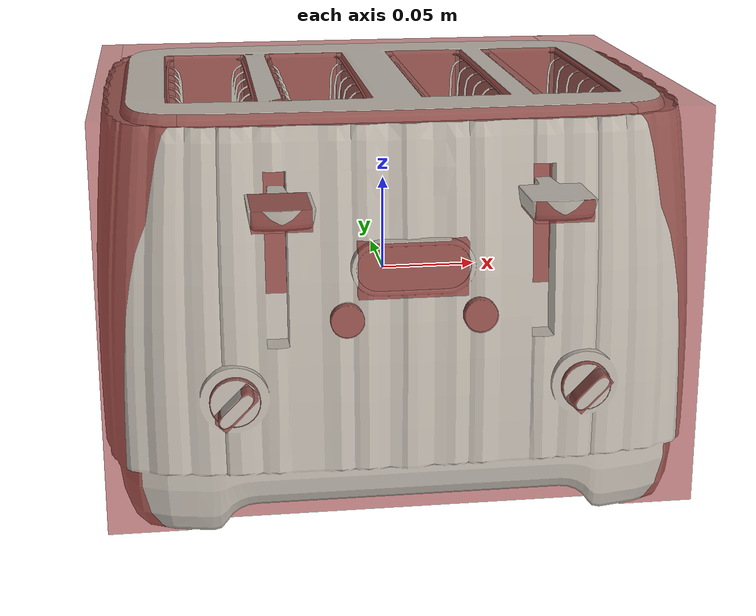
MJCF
<?xml version='1.0' encoding='UTF-8'?>
<mujoco model="model">
  <option timestep="0.002" gravity="0.0 0.0 -9.81"/>
  <compiler angle="radian"/>
  <asset>
    <mesh file="visuals/sideL_button_cancel.obj" name="sideL_button_cancel_vis"/>
    <mesh file="visuals/sideL_knob_doneness.obj" name="sideL_knob_doneness_vis"/>
    <mesh file="visuals/sideL_lever.obj" name="sideL_lever_vis"/>
    <mesh file="visuals/sideR_button_cancel.obj" name="sideR_button_cancel_vis"/>
    <mesh file="visuals/sideR_knob_doneness.obj" name="sideR_knob_doneness_vis"/>
    <mesh file="visuals/sideR_lever.obj" name="sideR_lever_vis"/>
    <mesh file="visuals/Body001.obj" name="Body001_vis"/>
    <mesh file="visuals/Body002.obj" name="Body002_vis"/>
    <texture file="visuals/T_BC001.png" name="Body001_material" type="2d"/>
    <material name="Body001_material" rgba="1 1 1 1.0" texture="Body001_material" shininess="0.4472135901451111" specular="0.8"/>
    <texture file="visuals/T_BC001.png" name="sideL_button_cancel_material" type="2d"/>
    <material name="sideL_button_cancel_material" rgba="1 1 1 1.0" texture="sideL_button_cancel_material" shininess="0.4472135901451111" specular="0.3103448502657381"/>
    <texture file="visuals/T_BC001.png" name="sideL_knob_doneness_material" type="2d"/>
    <material name="sideL_knob_doneness_material" rgba="1 1 1 1.0" texture="sideL_knob_doneness_material" shininess="0.4472135901451111" specular="0.3103448502657381"/>
    <texture file="visuals/T_BC001.png" name="sideL_lever_material" type="2d"/>
    <material name="sideL_lever_material" rgba="1 1 1 1.0" texture="sideL_lever_material" shininess="0.4472135901451111" specular="0.3103448502657381"/>
    <texture file="visuals/T_BC001.png" name="sideR_button_cancel_material" type="2d"/>
    <material name="sideR_button_cancel_material" rgba="1 1 1 1.0" texture="sideR_button_cancel_material" shininess="0.4472135901451111" specular="0.3103448502657381"/>
    <texture file="visuals/T_BC001.png" name="sideR_knob_doneness_material" type="2d"/>
    <material name="sideR_knob_doneness_material" rgba="1 1 1 1.0" texture="sideR_knob_doneness_material" shininess="0.4472135901451111" specular="0.3103448502657381"/>
    <texture file="visuals/T_BC001.png" name="sideR_lever_material" type="2d"/>
    <material name="sideR_lever_material" rgba="1 1 1 1.0" texture="sideR_lever_material" shininess="0.4472135901451111" specular="0.3103448502657381"/>
    <texture file="visuals/T_BC001.png" name="Body002_material" type="2d"/>
    <material name="Body002_material" rgba="1 1 1 1.0" texture="Body002_material" shininess="0.4472135901451111" specular="2"/>
  </asset>
  <default>
    <default class="visual">
      <geom conaffinity="0" contype="0" group="1" type="mesh"/>
    </default>
    <default class="collision_1">
      <geom group="0" rgba="0.5 0 0 0.5" solref="0.004 1" solimp="0.998 0.998 0.001"/>
    </default>
    <default class="collision_2">
      <geom group="0" rgba="0.5 0 0 0.5" solref="0.004 1" solimp="0.998 0.998 0.001"/>
    </default>
    <default class="collision_3">
      <geom group="0" rgba="0.5 0 0 0.5" solref="0.004 1" solimp="0.998 0.998 0.001"/>
    </default>
    <default class="collision_4">
      <geom group="0" rgba="0.5 0 0 0.5" solref="0.004 1" solimp="0.998 0.998 0.001"/>
    </default>
    <default class="collision_5">
      <geom group="0" rgba="0.5 0 0 0.5" solref="0.004 1" solimp="0.998 0.998 0.001"/>
    </default>
    <default class="collision_6">
      <geom group="0" rgba="0.5 0 0 0.5" solref="0.004 1" solimp="0.998 0.998 0.001"/>
    </default>
    <default class="collision_7">
      <geom group="0" rgba="0.5 0 0 0.5" solref="0.004 1" solimp="0.998 0.998 0.001"/>
    </default>
    <default class="collision_8">
      <geom group="0" rgba="0.5 0 0 0.5" solref="0.004 1" solimp="0.998 0.998 0.001"/>
    </default>
    <default class="spawn">
      <geom group="0" rgba="1 1 1 0.5" contype="0" conaffinity="0"/>
      <site group="0" rgba="1 1 1 0.5"/>
    </default>
    <default class="region">
      <geom group="1" conaffinity="0" contype="0" rgba="0 1 0 0" mass="0"/>
    </default>
  </default>
  <worldbody>
    <body>
      <body name="object">
        <geom mesh="Body001_vis" type="mesh" solimp="0.998 0.998 0.001" solref="0.001 1" friction="0.95 0.3 0.1" class="visual" material="Body001_material"/>
        <geom type="box" pos="0.13034540 0.02055267 -0.00108611" size="0.019284255802631378 0.11145979166030884 0.10421643406152725" quat="1.0 0.0 0.0 0.0" class="collision_1"/>
        <geom type="box" pos="-0.00606508 0.10902493 -0.00108615" size="0.13173864781856537 0.023420074954628944 0.10421624779701233" quat="1.0 0.0 0.0 0.0" class="collision_1"/>
        <geom type="box" pos="-0.12928747 0.02055267 -0.00108606" size="0.020824095234274864 0.11145979166030884 0.10421605408191681" quat="1.0 0.0 0.0 0.0" class="collision_1"/>
        <geom type="box" pos="-0.00007240 -0.07032656 0.09755719" size="0.11785958707332611 0.019685965031385422 0.005569088272750378" quat="1.0 0.0 0.0 0.0" class="collision_1"/>
        <geom type="box" pos="0.00066084 0.01841849 0.04039829" size="0.016128962859511375 0.07223571836948395 0.06272799521684647" quat="1.0 0.0 0.0 0.0" class="collision_1"/>
        <geom type="box" pos="0.06427547 0.01841849 0.04039829" size="0.009770859032869339 0.07223749905824661 0.06272956728935242" quat="1.0 0.0 0.0 0.0" class="collision_1"/>
        <geom type="box" pos="-0.06245058 0.01841849 0.04039829" size="0.008091136813163757 0.07223739475011826 0.06272947043180466" quat="1.0 0.0 0.0 0.0" class="collision_1"/>
        <geom type="box" pos="0.00036074 0.01778680 -0.05110373" size="0.11972908675670624 0.07246486842632294 0.020678618922829628" quat="1.0 0.0 0.0 0.0" class="collision_1"/>
        <geom type="box" pos="-0.00021507 -0.09784441 0.03213857" size="0.026278255507349968 0.013284342363476753 0.013284342363476753" quat="1.0 0.0 0.0 0.0" class="collision_1"/>
        <geom type="box" pos="-0.00007240 -0.08090873 -0.00270402" size="0.11785958707332611 0.009103802032768726 0.09735550731420517" quat="1.0 0.0 0.0 0.0" class="collision_1"/>
        <body name="sideL_button_cancel">
          <joint axis="0.0 1.0 0.0" pos="-0.03183753 -0.10756208 0.00809469" limited="true" name="sideL_button_cancel_joint" range="0.0 0.0008" type="slide" damping="1" frictionloss="1" armature=".01" stiffness="4" springref="-1"/>
          <geom mesh="sideL_button_cancel_vis" type="mesh" solimp="0.998 0.998 0.001" solref="0.001 1" friction="0.95 0.3 0.1" class="visual" material="sideL_button_cancel_material"/>
          <geom class="collision_2" type="cylinder" pos="-0.03187133 -0.10905561 0.00809484" size="0.00813758373260498 0.002120829187333584" quat="0.7071068286895752 0.7071067690849304 0.0 0.0" name="sideL_button_cancel_main"/>
        </body>
        <body name="sideL_knob_doneness">
          <joint axis="0.0 1.0 0.0" pos="-0.08607230 -0.11183050 -0.02973390" limited="true" name="sideL_knob_doneness_joint" range="0.0 4.625122517784973" type="hinge" damping="0.05" armature="1" frictionloss="0.75"/>
          <geom mesh="sideL_knob_doneness_vis" type="mesh" solimp="0.998 0.998 0.001" solref="0.001 1" friction="0.95 0.3 0.1" class="visual" material="sideL_knob_doneness_material"/>
          <geom type="cylinder" pos="-0.08607233 -0.11165517 -0.02967800" size="0.012285972945392132 0.001291563967242837" quat="0.7071068286895752 0.7071067690849304 0.0 0.0" class="collision_3" friction="100 0.5 0.01"/>
          <geom class="collision_3" type="box" pos="-0.08577871 -0.11763770 -0.02991685" size="0.003576950402930379 0.005857677664607763 0.010966707020998001" quat="0.9256851673126221 0.0 0.37829485535621643 0.0" name="sideL_knob_doneness_main" friction="100 0.5 0.01"/>
        </body>
        <body name="sideL_lever">
          <joint axis="0.0 0.0 -1.0" pos="-0.06409767 -0.11824421 0.06673145" limited="true" name="sideL_lever_joint" range="0.0 0.05" type="slide" damping="1" frictionloss="1" armature=".1" stiffness="3.1" springref="-0.5"/>
          <geom class="region" name="reg_sideL_slotL" type="box" pos="-0.09057961 0.017969669999999997 0.10428551" size="0.014573860000000001 0.06760254 0.07600008999999999"/>
          <geom class="region" name="reg_sideL_slotR" type="box" pos="-0.034365065 0.017969669999999997 0.10428551" size="0.014508485000000002 0.06760254 0.07600008999999999"/>
          <geom mesh="sideL_lever_vis" type="mesh" solimp="0.998 0.998 0.001" solref="0.001 1" friction="0.95 0.3 0.1" class="visual" material="sideL_lever_material"/>
          <geom class="collision_4" type="box" pos="-0.06426232 -0.12520139 0.06677558" size="0.013665889389812946 0.015225023031234741 0.005130822770297527" quat="1.0 0.0 0.0 0.0" name="sideL_lever_handle"/>
          <geom class="collision_4" type="box" pos="-0.09043335 0.01790192 0.02693849" size="0.012550000101327896 0.06549999862909317 0.0013252489734441042" quat="1.0 0.0 0.0 0.0" name="sideL_slotL_floor"/>
          <geom class="collision_4" type="box" pos="-0.03435850 0.01790192 0.02693849" size="0.012550000101327896 0.06549999862909317 0.0013252489734441042" quat="1.0 0.0 0.0 0.0" name="sideL_slotR_floor"/>
          <geom type="box" pos="-0.06426232 -0.10944630 0.06677558" size="0.0036664684303104877 0.015225023031234741 0.003805705811828375" quat="1.0 0.0 0.0 0.0" class="collision_4"/>
        </body>
        <body name="sideR_button_cancel">
          <joint axis="0.0 1.0 0.0" pos="0.03258492 -0.10756208 0.00809469" limited="true" name="sideR_button_cancel_joint" range="0.0 0.0008" type="slide" damping="1" frictionloss="1" armature=".01" stiffness="4" springref="-1"/>
          <geom mesh="sideR_button_cancel_vis" type="mesh" solimp="0.998 0.998 0.001" solref="0.001 1" friction="0.95 0.3 0.1" class="visual" material="sideR_button_cancel_material"/>
          <geom class="collision_5" type="cylinder" pos="0.03247449 -0.10905306 0.00809484" size="0.00832111295312643 0.0022583003155887127" quat="0.7071068286895752 0.7071067690849304 0.0 0.0" name="sideR_button_cancel_main"/>
        </body>
        <body name="sideR_knob_doneness">
          <joint axis="0.0 1.0 0.0" pos="0.08528162 -0.11155486 -0.03023053" limited="true" name="sideR_knob_doneness_joint" range="0.0 4.625122517784973" type="hinge" damping="0.05" armature="1" frictionloss="0.75"/>
          <geom mesh="sideR_knob_doneness_vis" type="mesh" solimp="0.998 0.998 0.001" solref="0.001 1" friction="0.95 0.3 0.1" class="visual" material="sideR_knob_doneness_material"/>
          <geom type="cylinder" pos="0.08521761 -0.11140575 -0.02998479" size="0.012285972945392132 0.001291563967242837" quat="0.7071068286895752 0.7071067690849304 0.0 0.0" class="collision_6" friction="100 0.5 0.01"/>
          <geom class="collision_6" type="box" pos="0.08523738 -0.11764308 -0.02982890" size="0.003576950402930379 0.005857677664607763 0.010966707020998001" quat="0.9256851673126221 0.0 0.37829485535621643 0.0" name="sideR_knob_doneness_main" friction="100 0.5 0.01"/>
        </body>
        <body name="sideR_lever">
          <joint axis="0.0 0.0 -1.0" pos="0.06407124 -0.11824420 0.06673145" limited="true" name="sideR_lever_joint" range="0.0 0.05" type="slide" damping="1" frictionloss="1" armature=".1" stiffness="3.1" springref="-0.5"/>
          <geom class="region" name="reg_sideR_slotL" type="box" pos="0.035383355000000005 0.017969669999999997 0.10428551" size="0.014287545000000002 0.06760254 0.07600008999999999"/>
          <geom class="region" name="reg_sideR_slotR" type="box" pos="0.092770255 0.017969669999999997 0.10428557000000001" size="0.014344375 0.06760254 0.07600015"/>
          <geom mesh="sideR_lever_vis" type="mesh" solimp="0.998 0.998 0.001" solref="0.001 1" friction="0.95 0.3 0.1" class="visual" material="sideR_lever_material"/>
          <geom class="collision_7" type="box" pos="0.06417233 -0.12520138 0.06667377" size="0.013591578230261803 0.015224780887365341 0.00513067189604044" quat="1.0 0.0 0.0 0.0" name="sideR_lever_handle"/>
          <geom class="collision_7" type="box" pos="0.03524426 0.01790192 0.02693850" size="0.012550000101327896 0.06549999862909317 0.0013252489734441042" quat="1.0 0.0 0.0 0.0" name="sideR_slotL_floor"/>
          <geom class="collision_7" type="box" pos="0.09272452 0.01790192 0.02693850" size="0.012550000101327896 0.06549999862909317 0.0013252455973997712" quat="1.0 0.0 0.0 0.0" name="sideR_slotR_floor"/>
          <geom type="box" pos="0.06395012 -0.10944630 0.06677558" size="0.0036664684303104877 0.015225023031234741 0.003805705811828375" quat="1.0 0.0 0.0 0.0" class="collision_7"/>
        </body>
        <body name="Body002">
          <geom mesh="Body002_vis" type="mesh" solimp="0.998 0.998 0.001" solref="0.001 1" friction="0.95 0.3 0.1" class="visual" material="Body002_material"/>
        </body>
        <geom class="region" name="reg_main" type="box" pos="-4.4499999998781625e-07 0.01582626000000001 -4.999999997368221e-09" size="0.153441515 0.12635319 0.104422025"/>
      </body>
    </body>
  </worldbody>
  <actuator>
    <motor name="sideL_button_cancel_joint_actuator" joint="sideL_button_cancel_joint" gear="0.5"/>
    <motor name="sideL_knob_doneness_joint_actuator" joint="sideL_knob_doneness_joint" gear="5"/>
    <motor name="sideL_lever_joint_actuator" joint="sideL_lever_joint" gear="5"/>
    <motor name="sideR_button_cancel_joint_actuator" joint="sideR_button_cancel_joint" gear="5"/>
    <motor name="sideR_knob_doneness_joint_actuator" joint="sideR_knob_doneness_joint" gear="5"/>
    <motor name="sideR_lever_joint_actuator" joint="sideR_lever_joint" gear="0.5"/>
  </actuator>
</mujoco>
